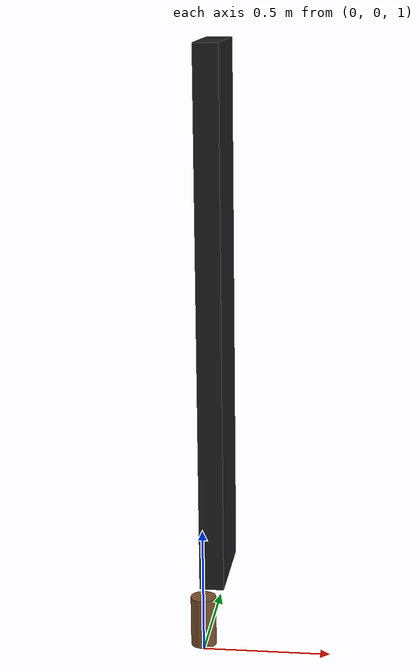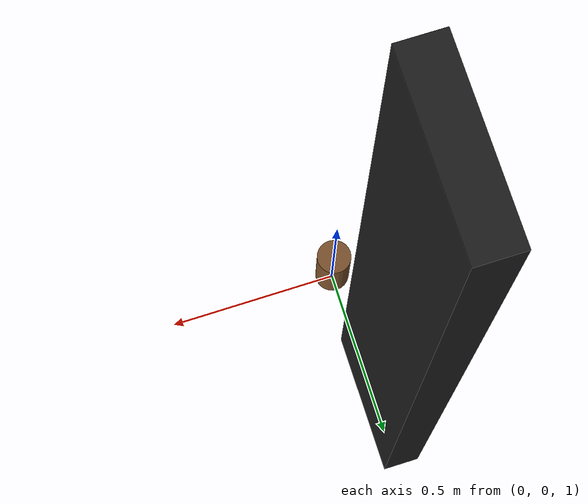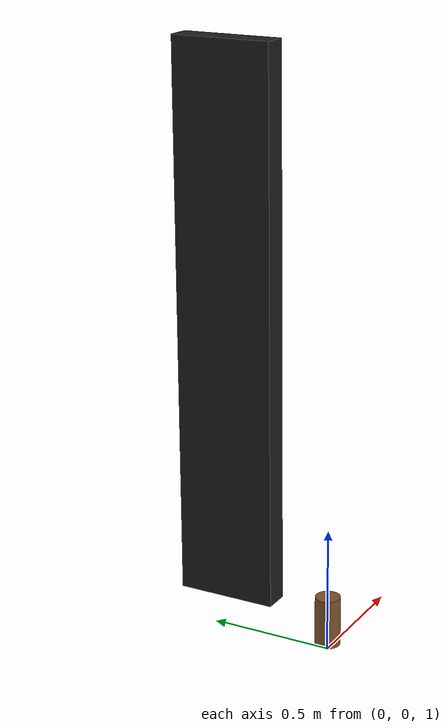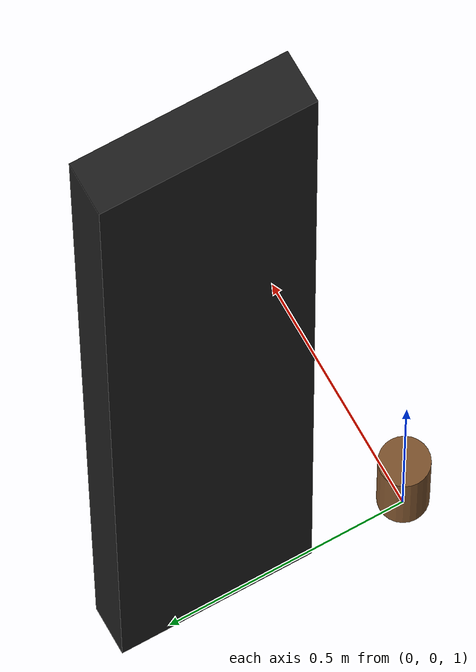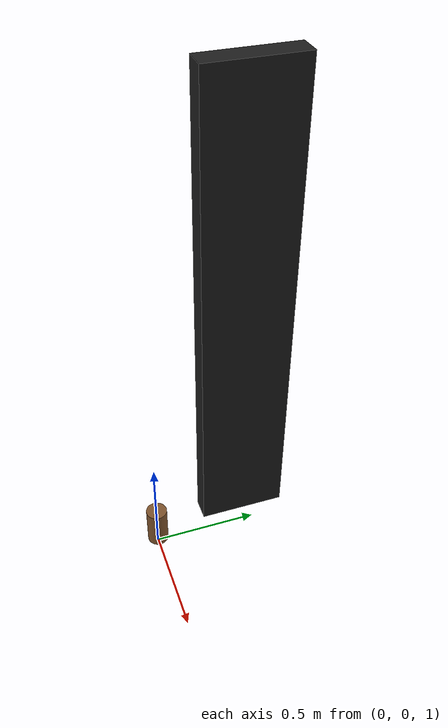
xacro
<?xml version="1.0"?>

<robot name="room_door">
  <link name="hinge">
    <inertial>
      <origin xyz="0 0 1.125"/>
      <mass value="0.5" />
      <inertia  ixx="1.0" ixy="0.0"  ixz="0.0"  iyy="100.0"  iyz="0.0"  izz="1.0" />
    </inertial>
    <visual>
      <origin xyz="0 0 1.125" rpy="0 0 0" />
      <geometry>
        <cylinder length="0.2" radius="0.05"/>
      </geometry>
    </visual>
  </link>

  <link name="door">
     <inertial>
      <origin xyz="0 0.2 1.125"/>
      <mass value="5.0" />
      <inertia  ixx="1.0" ixy="0.0"  ixz="0.0"  iyy="100.0"  iyz="0.0"  izz="1.0" />
    </inertial>
    <visual>
      <origin xyz="0 0.2 1.125" rpy="0 0 1.57" />
      <geometry>
        <box size="0.4 .1 2.2"/>
      </geometry>
    </visual>
  </link>

  <joint name="door_hinge" type="revolute">
    <parent link="hinge"/>
    <child link="door"/>
    <origin xyz="0 0.225 1.125"/>
    <axis xyz="0 0 1"/>
    <limit effort="15.0" lower="-1.57" upper="1.57" velocity="1"/>
  </joint>

 <gazebo reference="hinge">
   <material>Gazebo/Brown</material>
 </gazebo>

 <gazebo reference="door">
   <material>Gazebo/Black</material>
 </gazebo>

</robot>
